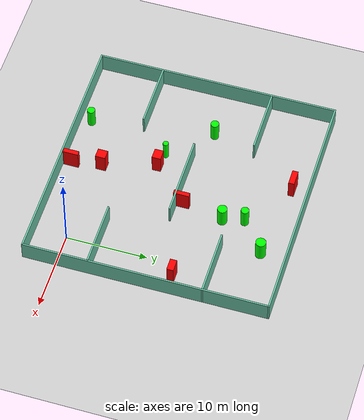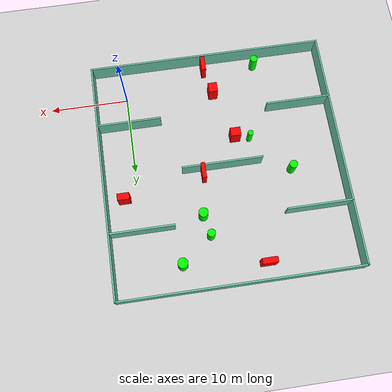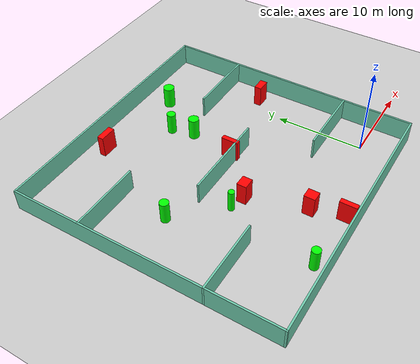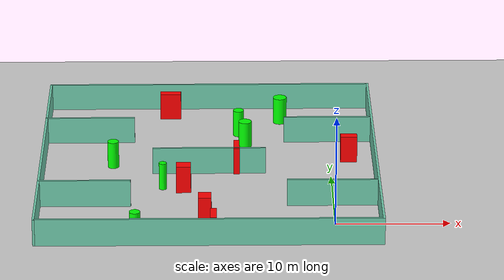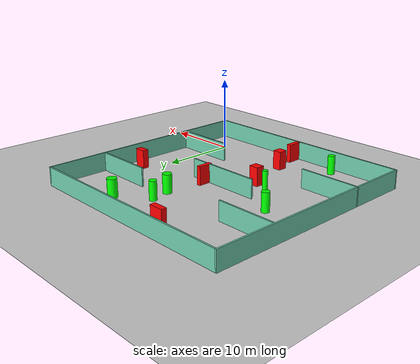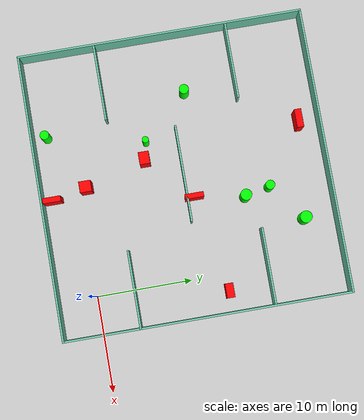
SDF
<sdf version="1.7">
 <world name="default">
  <light name="sun" type="directional">
   <pose>0 0 10 0 -0 0</pose>
   <diffuse>0.8 0.8 0.8 1</diffuse>
   <specular>0.2 0.2 0.2 1</specular>
   <attenuation>
    <range>1000</range>
    <constant>0.9</constant>
    <linear>0.01</linear>
    <quadratic>0.001</quadratic>
   </attenuation>
   <direction>-0.5 0.1 -0.9</direction>
   <spot><inner_angle>0</inner_angle><outer_angle>0</outer_angle><falloff>0</falloff></spot>
  </light>
  <model name="ground_plane">
   <static>1</static>
   <link name="link">
    <collision name="collision">
     <geometry><plane><normal>0 0 1</normal><size>100 100</size></plane></geometry>
     <surface>
      <contact><collide_bitmask>65535</collide_bitmask></contact>
      <friction><ode><mu>100</mu><mu2>50</mu2></ode></friction>
     </surface>
    </collision>
    <visual name="visual">
     <cast_shadows>0</cast_shadows>
     <geometry><plane><normal>0 0 1</normal><size>100 100</size></plane></geometry>
     <material>
      <script><uri>file://media/materials/scripts/gazebo.material</uri><name>Gazebo/Grey</name></script>
     </material>
    </visual>
   </link>
  </model>
  <gravity>0 0 -9.8</gravity>
  <magnetic_field>6e-06 2.3e-05 -4.2e-05</magnetic_field>
  <atmosphere type="adiabatic"/>
  <physics type="ode">
   <max_step_size>0.001</max_step_size>
   <real_time_factor>1</real_time_factor>
   <real_time_update_rate>1000</real_time_update_rate>
  </physics>
  <scene><ambient>0.4 0.4 0.4 1</ambient><background>0.7 0.7 0.7 1</background><shadows>1</shadows></scene>
  <spherical_coordinates>
   <surface_model>EARTH_WGS84</surface_model>
   <latitude_deg>0</latitude_deg>
   <longitude_deg>0</longitude_deg>
   <elevation>0</elevation>
   <heading_deg>0</heading_deg>
  </spherical_coordinates>
  <model name="my_base_walls">
   <link name="Wall_10">
    <collision name="Wall_10_Collision">
     <geometry><box><size>8.2 0.2 2.5</size></box></geometry>
     <pose>0 0 1.25 0 -0 0</pose>
    </collision>
    <visual name="Wall_10_Visual">
     <pose>0 0 1.25 0 -0 0</pose>
     <geometry><box><size>8.2 0.2 2.5</size></box></geometry>
     <material>
      <script><uri>file://media/materials/scripts/gazebo.material</uri><name>Gazebo/Grey</name></script>
      <ambient>0.435294 0.796078 0.67451 1</ambient>
     </material>
     <meta><layer>0</layer></meta>
    </visual>
    <pose>-11 -7 0 0 -0 0</pose>
   </link>
   <link name="Wall_12">
    <collision name="Wall_12_Collision">
     <geometry><box><size>8.2 0.2 2.5</size></box></geometry>
     <pose>0 0 1.25 0 -0 0</pose>
    </collision>
    <visual name="Wall_12_Visual">
     <pose>0 0 1.25 0 -0 0</pose>
     <geometry><box><size>8.2 0.2 2.5</size></box></geometry>
     <material>
      <script><uri>file://media/materials/scripts/gazebo.material</uri><name>Gazebo/Grey</name></script>
      <ambient>0.435294 0.796078 0.67451 1</ambient>
     </material>
     <meta><layer>0</layer></meta>
    </visual>
    <pose>-11 7 0 0 -0 0</pose>
   </link>
   <link name="Wall_14">
    <collision name="Wall_14_Collision">
     <geometry><box><size>8.2 0.2 2.5</size></box></geometry>
     <pose>0 0 1.25 0 -0 0</pose>
    </collision>
    <visual name="Wall_14_Visual">
     <pose>0 0 1.25 0 -0 0</pose>
     <geometry><box><size>8.2 0.2 2.5</size></box></geometry>
     <material>
      <script><uri>file://media/materials/scripts/gazebo.material</uri><name>Gazebo/Grey</name></script>
      <ambient>0.435294 0.796078 0.67451 1</ambient>
     </material>
     <meta><layer>0</layer></meta>
    </visual>
    <pose>11 7 0 0 -0 3.14159</pose>
   </link>
   <link name="Wall_16">
    <collision name="Wall_16_Collision">
     <geometry><box><size>10.2 0.2 2.5</size></box></geometry>
     <pose>0 0 1.25 0 -0 0</pose>
    </collision>
    <visual name="Wall_16_Visual">
     <pose>0 0 1.25 0 -0 0</pose>
     <geometry><box><size>10.2 0.2 2.5</size></box></geometry>
     <material>
      <script><uri>file://media/materials/scripts/gazebo.material</uri><name>Gazebo/Grey</name></script>
      <ambient>0.435294 0.796078 0.67451 1</ambient>
     </material>
     <meta><layer>0</layer></meta>
    </visual>
    <pose>0 0 0 0 -0 3.14159</pose>
   </link>
   <link name="Wall_2">
    <collision name="Wall_2_Collision">
     <geometry><box><size>30.2 0.2 2.5</size></box></geometry>
     <pose>0 0 1.25 0 -0 0</pose>
    </collision>
    <visual name="Wall_2_Visual">
     <pose>0 0 1.25 0 -0 0</pose>
     <geometry><box><size>30.2 0.2 2.5</size></box></geometry>
     <material>
      <script><uri>file://media/materials/scripts/gazebo.material</uri><name>Gazebo/Grey</name></script>
      <ambient>0.435294 0.796078 0.67451 1</ambient>
     </material>
     <meta><layer>0</layer></meta>
    </visual>
    <pose>0 -15 0 0 -0 3.14159</pose>
   </link>
   <link name="Wall_3">
    <collision name="Wall_3_Collision">
     <geometry><box><size>30.2 0.2 2.5</size></box></geometry>
     <pose>0 0 1.25 0 -0 0</pose>
    </collision>
    <visual name="Wall_3_Visual">
     <pose>0 0 1.25 0 -0 0</pose>
     <geometry><box><size>30.2 0.2 2.5</size></box></geometry>
     <material>
      <script><uri>file://media/materials/scripts/gazebo.material</uri><name>Gazebo/Grey</name></script>
      <ambient>0.435294 0.796078 0.67451 1</ambient>
     </material>
     <meta><layer>0</layer></meta>
    </visual>
    <pose>-15 0 0 0 -0 1.5708</pose>
   </link>
   <link name="Wall_4">
    <collision name="Wall_4_Collision">
     <geometry><box><size>30.2 0.2 2.5</size></box></geometry>
     <pose>0 0 1.25 0 -0 0</pose>
    </collision>
    <visual name="Wall_4_Visual">
     <pose>0 0 1.25 0 -0 0</pose>
     <geometry><box><size>30.2 0.2 2.5</size></box></geometry>
     <material>
      <script><uri>file://media/materials/scripts/gazebo.material</uri><name>Gazebo/Grey</name></script>
      <ambient>0.435294 0.796078 0.67451 1</ambient>
     </material>
     <meta><layer>0</layer></meta>
    </visual>
    <pose>0 15 0 0 -0 0</pose>
   </link>
   <link name="Wall_6">
    <collision name="Wall_6_Collision">
     <geometry><box><size>30.2 0.2 2.5</size></box></geometry>
     <pose>0 0 1.25 0 -0 0</pose>
    </collision>
    <visual name="Wall_6_Visual">
     <pose>0 0 1.25 0 -0 0</pose>
     <geometry><box><size>30.2 0.2 2.5</size></box></geometry>
     <material>
      <script><uri>file://media/materials/scripts/gazebo.material</uri><name>Gazebo/Grey</name></script>
      <ambient>0.435294 0.796078 0.67451 1</ambient>
     </material>
     <meta><layer>0</layer></meta>
    </visual>
    <pose>15 0 0 0 -0 1.5708</pose>
   </link>
   <link name="Wall_8">
    <collision name="Wall_8_Collision">
     <geometry><box><size>8.2 0.2 2.5</size></box></geometry>
     <pose>0 0 1.25 0 -0 0</pose>
    </collision>
    <visual name="Wall_8_Visual">
     <pose>0 0 1.25 0 -0 0</pose>
     <geometry><box><size>8.2 0.2 2.5</size></box></geometry>
     <material>
      <script><uri>file://media/materials/scripts/gazebo.material</uri><name>Gazebo/Grey</name></script>
      <ambient>0.435294 0.796078 0.67451 1</ambient>
     </material>
     <meta><layer>0</layer></meta>
    </visual>
    <pose>11 -7 0 0 -0 3.14159</pose>
   </link>
   <static>1</static>
   <pose>-11 11 0 0 -0 0</pose>
  </model>
  <model name="cylinder1">
   <static>1</static>
   <link name="link">
    <inertial>
     <mass>1</mass>
     <inertia><ixx>0.5</ixx><ixy>0</ixy><ixz>0</ixz><iyy>0.5</iyy><iyz>0</iyz><izz>1</izz></inertia>
    </inertial>
    <collision name="collision">
     <geometry><cylinder><radius>0.49063044604624595</radius><length>2.5</length></cylinder></geometry>
    </collision>
    <visual name="visual">
     <geometry><cylinder><radius>0.49063044604624595</radius><length>2.5</length></cylinder></geometry>
     <material>
      <ambient>0 1 0 1</ambient>
      <diffuse>0 1 0 1</diffuse>
      <specular>0.1 0.1 0.1 1</specular>
      <emissive>0 0 0 0</emissive>
     </material>
    </visual>
   </link>
   <pose>-8.279682006570269 19.63586858982627 1.25 0 0 0</pose>
  </model>
  <model name="cylinder2">
   <static>1</static>
   <link name="link">
    <inertial>
     <mass>1</mass>
     <inertia><ixx>0.5</ixx><ixy>0</ixy><ixz>0</ixz><iyy>0.5</iyy><iyz>0</iyz><izz>1</izz></inertia>
    </inertial>
    <collision name="collision">
     <geometry><cylinder><radius>0.6324743366094052</radius><length>2.5</length></cylinder></geometry>
    </collision>
    <visual name="visual">
     <geometry><cylinder><radius>0.6324743366094052</radius><length>2.5</length></cylinder></geometry>
     <material>
      <ambient>0 1 0 1</ambient>
      <diffuse>0 1 0 1</diffuse>
      <specular>0.1 0.1 0.1 1</specular>
      <emissive>0 0 0 0</emissive>
     </material>
    </visual>
   </link>
   <pose>-4.376887651351419 22.682871059970452 1.25 0 0 0</pose>
  </model>
  <model name="cylinder3">
   <static>1</static>
   <link name="link">
    <inertial>
     <mass>1</mass>
     <inertia><ixx>0.5</ixx><ixy>0</ixy><ixz>0</ixz><iyy>0.5</iyy><iyz>0</iyz><izz>1</izz></inertia>
    </inertial>
    <collision name="collision">
     <geometry><cylinder><radius>0.5053111062691112</radius><length>2.5</length></cylinder></geometry>
    </collision>
    <visual name="visual">
     <geometry><cylinder><radius>0.5053111062691112</radius><length>2.5</length></cylinder></geometry>
     <material>
      <ambient>0 1 0 1</ambient>
      <diffuse>0 1 0 1</diffuse>
      <specular>0.1 0.1 0.1 1</specular>
      <emissive>0 0 0 0</emissive>
     </material>
    </visual>
   </link>
   <pose>-19.709950533293508 12.545021710042546 1.25 0 0 0</pose>
  </model>
  <model name="cylinder4">
   <static>1</static>
   <link name="link">
    <inertial>
     <mass>1</mass>
     <inertia><ixx>0.5</ixx><ixy>0</ixy><ixz>0</ixz><iyy>0.5</iyy><iyz>0</iyz><izz>1</izz></inertia>
    </inertial>
    <collision name="collision">
     <geometry><cylinder><radius>0.34202322334741947</radius><length>2.5</length></cylinder></geometry>
    </collision>
    <visual name="visual">
     <geometry><cylinder><radius>0.34202322334741947</radius><length>2.5</length></cylinder></geometry>
     <material>
      <ambient>0 1 0 1</ambient>
      <diffuse>0 1 0 1</diffuse>
      <specular>0.1 0.1 0.1 1</specular>
      <emissive>0 0 0 0</emissive>
     </material>
    </visual>
   </link>
   <pose>-15.125625222596131 7.687092873829284 1.25 0 0 0</pose>
  </model>
  <model name="cylinder5">
   <static>1</static>
   <link name="link">
    <inertial>
     <mass>1</mass>
     <inertia><ixx>0.5</ixx><ixy>0</ixy><ixz>0</ixz><iyy>0.5</iyy><iyz>0</iyz><izz>1</izz></inertia>
    </inertial>
    <collision name="collision">
     <geometry><cylinder><radius>0.5906946086514102</radius><length>2.5</length></cylinder></geometry>
    </collision>
    <visual name="visual">
     <geometry><cylinder><radius>0.5906946086514102</radius><length>2.5</length></cylinder></geometry>
     <material>
      <ambient>0 1 0 1</ambient>
      <diffuse>0 1 0 1</diffuse>
      <specular>0.1 0.1 0.1 1</specular>
      <emissive>0 0 0 0</emissive>
     </material>
    </visual>
   </link>
   <pose>-7.691364453988172 17.00556357840005 1.25 0 0 0</pose>
  </model>
  <model name="cylinder6">
   <static>1</static>
   <link name="link">
    <inertial>
     <mass>1</mass>
     <inertia><ixx>0.5</ixx><ixy>0</ixy><ixz>0</ixz><iyy>0.5</iyy><iyz>0</iyz><izz>1</izz></inertia>
    </inertial>
    <collision name="collision">
     <geometry><cylinder><radius>0.47902665890172746</radius><length>2.5</length></cylinder></geometry>
    </collision>
    <visual name="visual">
     <geometry><cylinder><radius>0.47902665890172746</radius><length>2.5</length></cylinder></geometry>
     <material>
      <ambient>0 1 0 1</ambient>
      <diffuse>0 1 0 1</diffuse>
      <specular>0.1 0.1 0.1 1</specular>
      <emissive>0 0 0 0</emissive>
     </material>
    </visual>
   </link>
   <pose>-17.367162860574876 -2.552957948910244 1.25 0 0 0</pose>
  </model>
  <model name="box1">
   <static>1</static>
   <link name="link">
    <inertial>
     <mass>1</mass>
     <inertia><ixx>0.083</ixx><ixy>0</ixy><ixz>0</ixz><iyy>0.083</iyy><iyz>0</iyz><izz>0.083</izz></inertia>
    </inertial>
    <collision name="collision">
     <geometry><box><size>0.5265209410230625 1.9595130307540152 2.5</size></box></geometry>
    </collision>
    <visual name="visual">
     <geometry><box><size>0.5265209410230625 1.9595130307540152 2.5</size></box></geometry>
     <material>
      <ambient>1 0 0 1</ambient>
      <diffuse>1 0 0 1</diffuse>
      <specular>0.1 0.1 0.1 1</specular>
      <emissive>0 0 0 0</emissive>
     </material>
    </visual>
    <sensor name="my_contact" type="contact">
     <contact><collision>box_collision</collision><topic>__default_topic__</topic></contact>
    </sensor>
   </link>
   <pose>-8.521826460791864 11.707403573009293 1.25 0 0 0</pose>
  </model>
  <model name="box2">
   <static>1</static>
   <link name="link">
    <inertial>
     <mass>1</mass>
     <inertia><ixx>0.083</ixx><ixy>0</ixy><ixz>0</ixz><iyy>0.083</iyy><iyz>0</iyz><izz>0.083</izz></inertia>
    </inertial>
    <collision name="collision">
     <geometry><box><size>1.5011795379235962 0.8276586714274848 2.5</size></box></geometry>
    </collision>
    <visual name="visual">
     <geometry><box><size>1.5011795379235962 0.8276586714274848 2.5</size></box></geometry>
     <material>
      <ambient>1 0 0 1</ambient>
      <diffuse>1 0 0 1</diffuse>
      <specular>0.1 0.1 0.1 1</specular>
      <emissive>0 0 0 0</emissive>
     </material>
    </visual>
    <sensor name="my_contact" type="contact">
     <contact><collision>box_collision</collision><topic>__default_topic__</topic></contact>
    </sensor>
   </link>
   <pose>1.7252952052578188 13.632412393065671 1.25 0 0 0</pose>
  </model>
  <model name="box3">
   <static>1</static>
   <link name="link">
    <inertial>
     <mass>1</mass>
     <inertia><ixx>0.083</ixx><ixy>0</ixy><ixz>0</ixz><iyy>0.083</iyy><iyz>0</iyz><izz>0.083</izz></inertia>
    </inertial>
    <collision name="collision">
     <geometry><box><size>1.1584822713396816 1.2376365470587176 2.5</size></box></geometry>
    </collision>
    <visual name="visual">
     <geometry><box><size>1.1584822713396816 1.2376365470587176 2.5</size></box></geometry>
     <material>
      <ambient>1 0 0 1</ambient>
      <diffuse>1 0 0 1</diffuse>
      <specular>0.1 0.1 0.1 1</specular>
      <emissive>0 0 0 0</emissive>
     </material>
    </visual>
    <sensor name="my_contact" type="contact">
     <contact><collision>box_collision</collision><topic>__default_topic__</topic></contact>
    </sensor>
   </link>
   <pose>-11.362835623952071 0.75361619474879 1.25 0 0 0</pose>
  </model>
  <model name="box4">
   <static>1</static>
   <link name="link">
    <inertial>
     <mass>1</mass>
     <inertia><ixx>0.083</ixx><ixy>0</ixy><ixz>0</ixz><iyy>0.083</iyy><iyz>0</iyz><izz>0.083</izz></inertia>
    </inertial>
    <collision name="collision">
     <geometry><box><size>0.5646037684853684 1.9003231247093426 2.5</size></box></geometry>
    </collision>
    <visual name="visual">
     <geometry><box><size>0.5646037684853684 1.9003231247093426 2.5</size></box></geometry>
     <material>
      <ambient>1 0 0 1</ambient>
      <diffuse>1 0 0 1</diffuse>
      <specular>0.1 0.1 0.1 1</specular>
      <emissive>0 0 0 0</emissive>
     </material>
    </visual>
    <sensor name="my_contact" type="contact">
     <contact><collision>box_collision</collision><topic>__default_topic__</topic></contact>
    </sensor>
   </link>
   <pose>-10.594042939347188 -2.879106751360695 1.25 0 0 0</pose>
  </model>
  <model name="box5">
   <static>1</static>
   <link name="link">
    <inertial>
     <mass>1</mass>
     <inertia><ixx>0.083</ixx><ixy>0</ixy><ixz>0</ixz><iyy>0.083</iyy><iyz>0</iyz><izz>0.083</izz></inertia>
    </inertial>
    <collision name="collision">
     <geometry><box><size>1.297721556399859 1.0908274383115462 2.5</size></box></geometry>
    </collision>
    <visual name="visual">
     <geometry><box><size>1.297721556399859 1.0908274383115462 2.5</size></box></geometry>
     <material>
      <ambient>1 0 0 1</ambient>
      <diffuse>1 0 0 1</diffuse>
      <specular>0.1 0.1 0.1 1</specular>
      <emissive>0 0 0 0</emissive>
     </material>
    </visual>
    <sensor name="my_contact" type="contact">
     <contact><collision>box_collision</collision><topic>__default_topic__</topic></contact>
    </sensor>
   </link>
   <pose>-13.27157628103974 7.250615996977299 1.25 0 0 0</pose>
  </model>
  <model name="box6">
   <static>1</static>
   <link name="link">
    <inertial>
     <mass>1</mass>
     <inertia><ixx>0.083</ixx><ixy>0</ixy><ixz>0</ixz><iyy>0.083</iyy><iyz>0</iyz><izz>0.083</izz></inertia>
    </inertial>
    <collision name="collision">
     <geometry><box><size>1.9218679223787614 0.7176856054950889 2.5</size></box></geometry>
    </collision>
    <visual name="visual">
     <geometry><box><size>1.9218679223787614 0.7176856054950889 2.5</size></box></geometry>
     <material>
      <ambient>1 0 0 1</ambient>
      <diffuse>1 0 0 1</diffuse>
      <specular>0.1 0.1 0.1 1</specular>
      <emissive>0 0 0 0</emissive>
     </material>
    </visual>
    <sensor name="my_contact" type="contact">
     <contact><collision>box_collision</collision><topic>__default_topic__</topic></contact>
    </sensor>
   </link>
   <pose>-14.645077300280947 23.83606970752394 1.25 0 0 0</pose>
  </model>
 </world>
</sdf>
